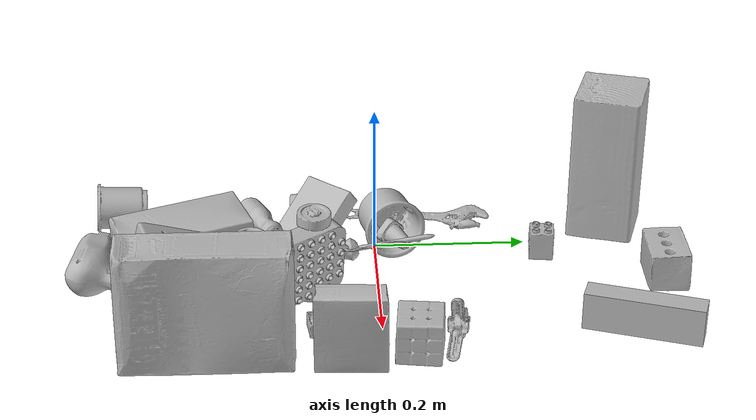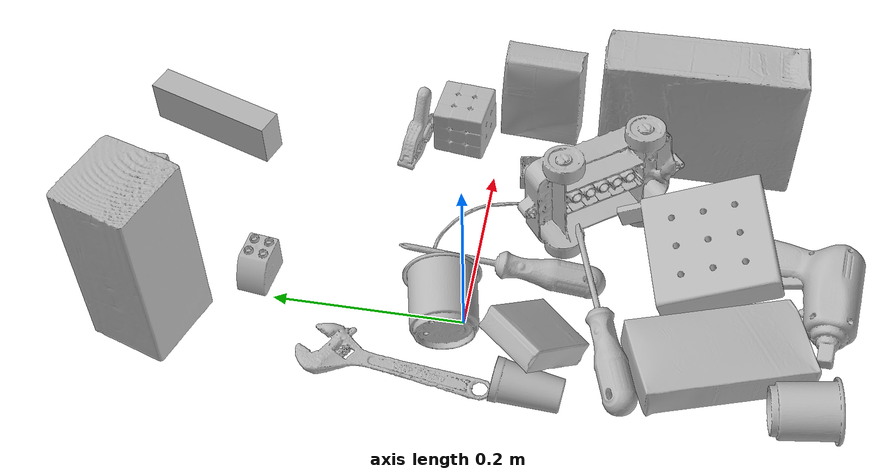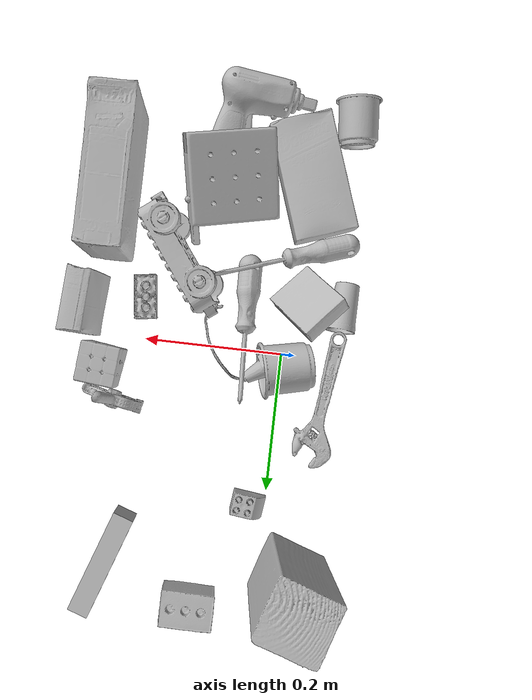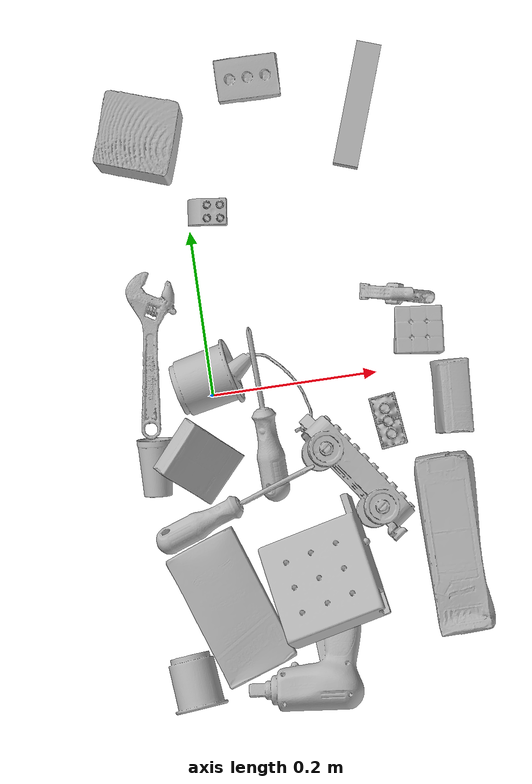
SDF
<sdf version="1.4">
  <world name="default">
    <light name="light1" type="point">
      <pose>0 0 1 0 0 0</pose>
      <diffuse>3 3 3 1</diffuse>
      <specular>3 3 3 1</specular>
    </light>
    <light name="light2" type="point">
      <pose>0 0.5 2 0 0 0</pose>
      <diffuse>1 1 1 1</diffuse>
      <specular>1 1 1 1</specular>
    </light>
    <light name="light3" type="point">
      <pose>0 0.5 2 0 0 0</pose>
      <diffuse>3 3 3 1</diffuse>
      <specular>3 3 3 1</specular>
    </light>
    <scene>
      <ambient>0.7 0.7 0.7</ambient>
    </scene>
    <model name="box21">
      <link name="link_box21">
        <collision name="default">
          <geometry>
            <mesh>
              <uri>model://cracker_box/collision_meshes/collision.obj</uri>
              <scale>1.0 1.0 1.0</scale>
            </mesh>
          </geometry>
          <surface>
            <friction>
              <ode>
                <mu>0.5</mu>
                <mu2>0.5</mu2>
              </ode>
            </friction>
          <contact>
        <ode>
            <max_vel>0</max_vel>
            <min_depth>0.0001</min_depth>
            <kp>1e8</kp>
        </ode>
    </contact></surface>
        </collision>
        <visual name="default">
          <geometry>
            <mesh>
              <uri>model://cracker_box/visual_meshes/visual.dae</uri>
              <scale>1.0 1.0 1.0</scale>
            </mesh>
          </geometry>
        </visual>
        <inertial>
          <mass>2.967785358428955</mass>
          <pose>0.0009464151808060706 0.00025434247800149024 -0.0017029535956680775 -0.0003162076618733006 -0.011106490531610344 0.00254679570085012</pose>
          <inertia>
            <ixx>0.0075487206</ixx>
            <iyy>0.012464421</iyy>
            <izz>0.017787872</izz>
            <ixy>0</ixy>
            <ixz>0</ixz>
            <iyz>0</iyz>
          </inertia>
        </inertial>
      </link>
      <pose>0.26229333877563477 -0.21423232555389404 0.08175766468048096 1.5452340324261462 0.009040538528878551 1.5827887459174892</pose>
    </model>
    <model name="box22">
      <link name="link_box22">
        <collision name="default">
          <geometry>
            <mesh>
              <uri>model://rubiks_cube/collision_meshes/collision.obj</uri>
              <scale>1.0 1.0 1.0</scale>
            </mesh>
          </geometry>
          <surface>
            <friction>
              <ode>
                <mu>0.5</mu>
                <mu2>0.5</mu2>
              </ode>
            </friction>
          <contact>
        <ode>
            <max_vel>0</max_vel>
            <min_depth>0.0001</min_depth>
            <kp>1e8</kp>
        </ode>
    </contact></surface>
        </collision>
        <visual name="default">
          <geometry>
            <mesh>
              <uri>model://rubiks_cube/visual_meshes/visual.dae</uri>
              <scale>1.0 1.0 1.0</scale>
            </mesh>
          </geometry>
        </visual>
        <inertial>
          <mass>0.2631562352180481</mass>
          <pose>2.6721041649580002e-05 5.2569666877388954e-05 -7.264316082000732e-06 -0.05467275409565722 -0.09814109117242276 -0.03445701547045584</pose>
          <inertia>
            <ixx>0.0001454115</ixx>
            <iyy>0.00014473335</iyy>
            <izz>0.00014661645</izz>
            <ixy>0</ixy>
            <ixz>0</ixz>
            <iyz>0</iyz>
          </inertia>
        </inertial>
      </link>
      <pose>0.25725722312927246 0.04285190626978874 0.02905973419547081 -3.134139521447266 0.010892369206653093 1.4346081183425516</pose>
    </model>
    <model name="box23">
      <link name="link_box23">
        <collision name="default">
          <geometry>
            <mesh>
              <uri>model://pudding_box/collision_meshes/collision.obj</uri>
              <scale>1.0 1.0 1.0</scale>
            </mesh>
          </geometry>
          <surface>
            <friction>
              <ode>
                <mu>0.5</mu>
                <mu2>0.5</mu2>
              </ode>
            </friction>
          <contact>
        <ode>
            <max_vel>0</max_vel>
            <min_depth>0.0001</min_depth>
            <kp>1e8</kp>
        </ode>
    </contact></surface>
        </collision>
        <visual name="default">
          <geometry>
            <mesh>
              <uri>model://pudding_box/visual_meshes/visual.dae</uri>
              <scale>1.0 1.0 1.0</scale>
            </mesh>
          </geometry>
        </visual>
        <inertial>
          <mass>0.41353368759155273</mass>
          <pose>0.0004894821904599667 0.0008067885646596551 -0.0005188827635720372 0.005213101814074476 -0.006603797777454713 0.020079821436089117</pose>
          <inertia>
            <ixx>0.0004674785</ixx>
            <iyy>0.00031452288</iyy>
            <izz>0.0006903542</izz>
            <ixy>0</ixy>
            <ixz>0</ixz>
            <iyz>0</iyz>
          </inertia>
        </inertial>
      </link>
      <pose>0.28457435965538025 -0.041945405304431915 0.056136906147003174 1.6395836372156884 -0.001167702822641025 1.523016416711767</pose>
    </model>
    <model name="cup1">
      <link name="link_cup1">
        <collision name="default">
          <geometry>
            <mesh>
              <uri>model://cup_small/collision_meshes/collision.obj</uri>
              <scale>1.0 1.0 1.0</scale>
            </mesh>
          </geometry>
          <surface>
            <friction>
              <ode>
                <mu>0.5</mu>
                <mu2>0.5</mu2>
              </ode>
            </friction>
          <contact>
        <ode>
            <max_vel>0</max_vel>
            <min_depth>0.0001</min_depth>
            <kp>1e8</kp>
        </ode>
    </contact></surface>
        </collision>
        <visual name="default">
          <geometry>
            <mesh>
              <uri>model://cup_small/visual_meshes/visual.dae</uri>
              <scale>1.0 1.0 1.0</scale>
            </mesh>
          </geometry>
        </visual>
        <inertial>
          <mass>0.02095564641058445</mass>
          <pose>0.00010482477955520153 -0.0003377848770469427 -0.01074282731860876 -0.011492722259696445 -0.015280529703091471 -0.5058449819350237</pose>
          <inertia>
            <ixx>1.2338362e-05</ixx>
            <iyy>1.240201e-05</iyy>
            <izz>5.5708097e-06</izz>
            <ixy>0</ixy>
            <ixz>0</ixz>
            <iyz>0</iyz>
          </inertia>
        </inertial>
      </link>
      <pose>-0.07991788536310196 -0.07663599401712418 0.020228885114192963 1.4932812880287856 -0.03315019685598828 3.053904740400876</pose>
    </model>
    <model name="cup2">
      <link name="link_cup2">
        <collision name="default">
          <geometry>
            <mesh>
              <uri>model://c_cups/collision_meshes/collision.obj</uri>
              <scale>1.0 1.0 1.0</scale>
            </mesh>
          </geometry>
          <surface>
            <friction>
              <ode>
                <mu>0.5</mu>
                <mu2>0.5</mu2>
              </ode>
            </friction>
          <contact>
        <ode>
            <max_vel>0</max_vel>
            <min_depth>0.0001</min_depth>
            <kp>1e8</kp>
        </ode>
    </contact></surface>
        </collision>
        <visual name="default">
          <geometry>
            <mesh>
              <uri>model://c_cups/visual_meshes/visual.dae</uri>
              <scale>1.0 1.0 1.0</scale>
            </mesh>
          </geometry>
        </visual>
        <inertial>
          <mass>0.04905003309249878</mass>
          <pose>0.0007237255922518671 0.0020153908990323544 -0.0012750986497849226 0.30215813246853196 0.013461388587527759 -0.08771773533446486</pose>
          <inertia>
            <ixx>3.6477843e-05</ixx>
            <iyy>3.583322e-05</iyy>
            <izz>3.225985e-05</izz>
            <ixy>0</ixy>
            <ixz>0</ixz>
            <iyz>0</iyz>
          </inertia>
        </inertial>
      </link>
      <pose>-0.06977666169404984 -0.3399997651576996 0.029918435961008072 1.4865195708463423 -0.03593951686462922 0.10270641146107114</pose>
    </model>
    <model name="box11">
      <link name="link_box11">
        <collision name="default">
          <geometry>
            <mesh>
              <uri>model://sugar_box/collision_meshes/collision.obj</uri>
              <scale>1.0 1.0 1.0</scale>
            </mesh>
          </geometry>
          <surface>
            <friction>
              <ode>
                <mu>0.5</mu>
                <mu2>0.5</mu2>
              </ode>
            </friction>
          <contact>
        <ode>
            <max_vel>0</max_vel>
            <min_depth>0.0001</min_depth>
            <kp>1e8</kp>
        </ode>
    </contact></surface>
        </collision>
        <visual name="default">
          <geometry>
            <mesh>
              <uri>model://sugar_box/visual_meshes/visual.dae</uri>
              <scale>1.0 1.0 1.0</scale>
            </mesh>
          </geometry>
        </visual>
        <inertial>
          <mass>0.9405714869499207</mass>
          <pose>0.0010343727190047503 3.849109634757042e-05 -0.0003636480832938105 -0.00040462618385709627 0.0010506635220579009 0.0026153790218148127</pose>
          <inertia>
            <ixx>0.0007836817</ixx>
            <iyy>0.0025330195</iyy>
            <izz>0.0030323272</izz>
            <ixy>0</ixy>
            <ixz>0</ixz>
            <iyz>0</iyz>
          </inertia>
        </inertial>
      </link>
      <pose>-0.01464706938713789 -0.2577778697013855 0.022798608988523483 0.000775854843630951 -0.023433431638763866 1.8998047292593963</pose>
    </model>
    <model name="box12">
      <link name="link_box12">
        <collision name="default">
          <geometry>
            <mesh>
              <uri>model://jenga/collision_meshes/collision.obj</uri>
              <scale>1.0 1.0 1.0</scale>
            </mesh>
          </geometry>
          <surface>
            <friction>
              <ode>
                <mu>0.5</mu>
                <mu2>0.5</mu2>
              </ode>
            </friction>
          <contact>
        <ode>
            <max_vel>0</max_vel>
            <min_depth>0.0001</min_depth>
            <kp>1e8</kp>
        </ode>
    </contact></surface>
        </collision>
        <visual name="default">
          <geometry>
            <mesh>
              <uri>model://jenga/visual_meshes/visual.dae</uri>
              <scale>1.0 1.0 1.0</scale>
            </mesh>
          </geometry>
        </visual>
        <inertial>
          <mass>0.2285791039466858</mass>
          <pose>-2.502855807051674e-07 -0.00010250010382151231 -4.0923405322246253e-05 0.0 -7.342155186052628e-07 0.0</pose>
          <inertia>
            <ixx>6.3253385e-05</ixx>
            <iyy>0.00042860323</iyy>
            <izz>0.00045757034</izz>
            <ixy>0</ixy>
            <ixz>0</ixz>
            <iyz>0</iyz>
          </inertia>
        </inertial>
      </link>
      <pose>0.22284729778766632 0.32262101769447327 0.024496953934431076 -1.5774974918514266 -3.4341800999792434e-08 1.2349744694209355</pose>
    </model>
    <model name="box13">
      <link name="link_box13">
        <collision name="default">
          <geometry>
            <mesh>
              <uri>model://wood_block/collision_meshes/collision.obj</uri>
              <scale>1.0 1.0 1.0</scale>
            </mesh>
          </geometry>
          <surface>
            <friction>
              <ode>
                <mu>0.5</mu>
                <mu2>0.5</mu2>
              </ode>
            </friction>
          <contact>
        <ode>
            <max_vel>0</max_vel>
            <min_depth>0.0001</min_depth>
            <kp>1e8</kp>
        </ode>
    </contact></surface>
        </collision>
        <visual name="default">
          <geometry>
            <mesh>
              <uri>model://wood_block/visual_meshes/visual.dae</uri>
              <scale>1.0 1.0 1.0</scale>
            </mesh>
          </geometry>
        </visual>
        <inertial>
          <mass>1.608048677444458</mass>
          <pose>-5.813315056002466e-06 -0.000570809468626976 0.0002640858292579651 -0.05220975529066727 -0.005192695547513155 -0.006861377927637377</pose>
          <inertia>
            <ixx>0.002151813</ixx>
            <iyy>0.006797577</iyy>
            <izz>0.0067721503</izz>
            <ixy>0</ixy>
            <ixz>0</ixz>
            <iyz>0</iyz>
          </inertia>
        </inertial>
      </link>
      <pose>-0.04184805601835251 0.3151460886001587 0.10359001904726028 -3.0767621709932667 -1.5707957104157335 -0.38547084055091063</pose>
    </model>
    <model name="box14">
      <link name="link_box14">
        <collision name="default">
          <geometry>
            <mesh>
              <uri>model://gelatin_box/collision_meshes/collision.obj</uri>
              <scale>1.0 1.0 1.0</scale>
            </mesh>
          </geometry>
          <surface>
            <friction>
              <ode>
                <mu>0.5</mu>
                <mu2>0.5</mu2>
              </ode>
            </friction>
          <contact>
        <ode>
            <max_vel>0</max_vel>
            <min_depth>0.0001</min_depth>
            <kp>1e8</kp>
        </ode>
    </contact></surface>
        </collision>
        <visual name="default">
          <geometry>
            <mesh>
              <uri>model://gelatin_box/visual_meshes/visual.dae</uri>
              <scale>1.0 1.0 1.0</scale>
            </mesh>
          </geometry>
        </visual>
        <inertial>
          <mass>0.228233203291893</mass>
          <pose>0.0004319618456065655 0.00011156871914863586 -0.0003640321083366871 -0.0010503721031013481 -0.004755817754301117 0.016440566922732165</pose>
          <inertia>
            <ixx>0.000161114</ixx>
            <iyy>0.0001150829</iyy>
            <izz>0.0002452514</izz>
            <ixy>0</ixy>
            <ixz>0</ixz>
            <iyz>0</iyz>
          </inertia>
        </inertial>
      </link>
      <pose>-0.028374968096613884 -0.07629168778657913 0.034725505858659744 2.5264221610436057 0.0045695973969176965 -2.285932071846181</pose>
    </model>
    <model name="cup15">
      <link name="link_cup15">
        <collision name="default">
          <geometry>
            <mesh>
              <uri>model://f_cups/collision_meshes/collision.obj</uri>
              <scale>1.0 1.0 1.0</scale>
            </mesh>
          </geometry>
          <surface>
            <friction>
              <ode>
                <mu>0.5</mu>
                <mu2>0.5</mu2>
              </ode>
            </friction>
          <contact>
        <ode>
            <max_vel>0</max_vel>
            <min_depth>0.0001</min_depth>
            <kp>1e8</kp>
        </ode>
    </contact></surface>
        </collision>
        <visual name="default">
          <geometry>
            <mesh>
              <uri>model://f_cups/visual_meshes/visual.dae</uri>
              <scale>1.0 1.0 1.0</scale>
            </mesh>
          </geometry>
        </visual>
        <inertial>
          <mass>0.05267045274376869</mass>
          <pose>-0.003171468386426568 -0.0006240073125809431 -0.003655537962913513 0.7862325736201227 -0.2607934836260618 -0.18237270236977254</pose>
          <inertia>
            <ixx>4.9511644e-05</ixx>
            <iyy>5.193826e-05</iyy>
            <izz>5.4069198e-05</izz>
            <ixy>0</ixy>
            <ixz>0</ixz>
            <iyz>0</iyz>
          </inertia>
        </inertial>
      </link>
      <pose>-0.005837590433657169 0.01938876323401928 0.037030719220638275 1.3151746665343327 -1.1784390165724614 2.0229805167243566</pose>
    </model>
    <model name="toy1">
      <link name="link_toy1">
        <collision name="default">
          <geometry>
            <mesh>
              <uri>model://g_lego_duplo/collision_meshes/collision.obj</uri>
              <scale>1.0 1.0 1.0</scale>
            </mesh>
          </geometry>
          <surface>
            <friction>
              <ode>
                <mu>0.5</mu>
                <mu2>0.5</mu2>
              </ode>
            </friction>
          <contact>
        <ode>
            <max_vel>0</max_vel>
            <min_depth>0.0001</min_depth>
            <kp>1e8</kp>
        </ode>
    </contact></surface>
        </collision>
        <visual name="default">
          <geometry>
            <mesh>
              <uri>model://g_lego_duplo/visual_meshes/visual.dae</uri>
              <scale>1.0 1.0 1.0</scale>
            </mesh>
          </geometry>
        </visual>
        <inertial>
          <mass>0.5557854771614075</mass>
          <pose>-0.050047677010297775 0.0017554635414853692 0.0038806761149317026 0.01096300832625367 0.038108254431045284 -0.0965302354071939</pose>
          <inertia>
            <ixx>0.0008053398</ixx>
            <iyy>0.0024348022</iyy>
            <izz>0.003046027</izz>
            <ixy>0</ixy>
            <ixz>0</ixz>
            <iyz>0</iyz>
          </inertia>
        </inertial>
      </link>
      <pose>0.12021763622760773 -0.07091329246759415 0.05949978530406952 1.669468903130492 0.007948633645183383 2.196303372308948</pose>
    </model>
    <model name="toy2">
      <link name="link_toy2">
        <collision name="default">
          <geometry>
            <mesh>
              <uri>model://b_toy_airplane/collision_meshes/collision.obj</uri>
              <scale>1.0 1.0 1.0</scale>
            </mesh>
          </geometry>
          <surface>
            <friction>
              <ode>
                <mu>0.5</mu>
                <mu2>0.5</mu2>
              </ode>
            </friction>
          <contact>
        <ode>
            <max_vel>0</max_vel>
            <min_depth>0.0001</min_depth>
            <kp>1e8</kp>
        </ode>
    </contact></surface>
        </collision>
        <visual name="default">
          <geometry>
            <mesh>
              <uri>model://b_toy_airplane/visual_meshes/visual.dae</uri>
              <scale>1.0 1.0 1.0</scale>
            </mesh>
          </geometry>
        </visual>
        <inertial>
          <mass>0.5134223699569702</mass>
          <pose>0.00508136348798871 0.004015584941953421 0.009543065913021564 -0.0400181167848636 -0.04022184003740235 -0.5601502230799963</pose>
          <inertia>
            <ixx>0.00095317804</ixx>
            <iyy>0.00038099466</iyy>
            <izz>0.0011858484</izz>
            <ixy>0</ixy>
            <ixz>0</ixz>
            <iyz>0</iyz>
          </inertia>
        </inertial>
      </link>
      <pose>0.09175761044025421 -0.34398314356803894 0.01697789877653122 0.18487881993076677 0.11350239371996788 3.043269868546437</pose>
    </model>
    <model name="toy3">
      <link name="link_toy3">
        <collision name="default">
          <geometry>
            <mesh>
              <uri>model://foam_brick/collision_meshes/collision.obj</uri>
              <scale>1.0 1.0 1.0</scale>
            </mesh>
          </geometry>
          <surface>
            <friction>
              <ode>
                <mu>0.5</mu>
                <mu2>0.5</mu2>
              </ode>
            </friction>
          <contact>
        <ode>
            <max_vel>0</max_vel>
            <min_depth>0.0001</min_depth>
            <kp>1e8</kp>
        </ode>
    </contact></surface>
        </collision>
        <visual name="default">
          <geometry>
            <mesh>
              <uri>model://foam_brick/visual_meshes/visual.dae</uri>
              <scale>1.0 1.0 1.0</scale>
            </mesh>
          </geometry>
        </visual>
        <inertial>
          <mass>0.10737738013267517</mass>
          <pose>-0.0002522472059354186 0.00034584314562380314 -0.0002532101352699101 -0.29401713280371045 0.01727443708188723 -0.0007449863066790336</pose>
          <inertia>
            <ixx>4.6904443e-05</ixx>
            <iyy>7.488536e-05</iyy>
            <izz>7.583706e-05</izz>
            <ixy>0</ixy>
            <ixz>0</ixz>
            <iyz>0</iyz>
          </inertia>
        </inertial>
      </link>
      <pose>0.09634832292795181 0.37333014607429504 0.025917530059814453 0.013817567968288005 0.0042768164586688496 -0.007986944490027658</pose>
    </model>
    <model name="toy4">
      <link name="link_toy4">
        <collision name="default">
          <geometry>
            <mesh>
              <uri>model://c_lego_duplo/collision_meshes/collision.obj</uri>
              <scale>1.0 1.0 1.0</scale>
            </mesh>
          </geometry>
          <surface>
            <friction>
              <ode>
                <mu>0.5</mu>
                <mu2>0.5</mu2>
              </ode>
            </friction>
          <contact>
        <ode>
            <max_vel>0</max_vel>
            <min_depth>0.0001</min_depth>
            <kp>1e8</kp>
        </ode>
    </contact></surface>
        </collision>
        <visual name="default">
          <geometry>
            <mesh>
              <uri>model://c_lego_duplo/visual_meshes/visual.dae</uri>
              <scale>1.0 1.0 1.0</scale>
            </mesh>
          </geometry>
        </visual>
        <inertial>
          <mass>0.0418582409620285</mass>
          <pose>0.00031645974377170205 0.00019464627257548273 0.0010453157592564821 -0.011520806412656213 0.005900100982121691 0.03110035028309464</pose>
          <inertia>
            <ixx>1.6107831e-05</ixx>
            <iyy>5.145423e-06</iyy>
            <izz>1.8823655e-05</izz>
            <ixy>0</ixy>
            <ixz>0</ixz>
            <iyz>0</iyz>
          </inertia>
        </inertial>
      </link>
      <pose>0.20579130947589874 -0.06064238399267197 0.011916476301848888 -3.1351425949735807 -0.0005020279360379671 -2.9949077997283178</pose>
    </model>
    <model name="toy5">
      <link name="link_toy5">
        <collision name="default">
          <geometry>
            <mesh>
              <uri>model://nine_hole_peg_test/collision_meshes/collision.obj</uri>
              <scale>1.0 1.0 1.0</scale>
            </mesh>
          </geometry>
          <surface>
            <friction>
              <ode>
                <mu>0.5</mu>
                <mu2>0.5</mu2>
              </ode>
            </friction>
          <contact>
        <ode>
            <max_vel>0</max_vel>
            <min_depth>0.0001</min_depth>
            <kp>1e8</kp>
        </ode>
    </contact></surface>
        </collision>
        <visual name="default">
          <geometry>
            <mesh>
              <uri>model://nine_hole_peg_test/visual_meshes/visual.dae</uri>
              <scale>1.0 1.0 1.0</scale>
            </mesh>
          </geometry>
        </visual>
        <inertial>
          <mass>0.44585999846458435</mass>
          <pose>-0.004617387428879738 -0.009647615253925323 2.6460689696250483e-05 -0.001466677754783098 0.0007194209279192062 -0.6342398490080472</pose>
          <inertia>
            <ixx>0.0006971755</ixx>
            <iyy>0.0006509454</iyy>
            <izz>0.0012216569</izz>
            <ixy>0</ixy>
            <ixz>0</ixz>
            <iyz>0</iyz>
          </inertia>
        </inertial>
      </link>
      <pose>0.10435278713703156 -0.22893604636192322 0.04606170207262039 -0.31693473611814604 -0.18252881215396052 0.24006291509303826</pose>
    </model>
    <model name="toy6">
      <link name="link_toy6">
        <collision name="default">
          <geometry>
            <mesh>
              <uri>model://d_lego_duplo/collision_meshes/collision.obj</uri>
              <scale>1.0 1.0 1.0</scale>
            </mesh>
          </geometry>
          <surface>
            <friction>
              <ode>
                <mu>0.5</mu>
                <mu2>0.5</mu2>
              </ode>
            </friction>
          <contact>
        <ode>
            <max_vel>0</max_vel>
            <min_depth>0.0001</min_depth>
            <kp>1e8</kp>
        </ode>
    </contact></surface>
        </collision>
        <visual name="default">
          <geometry>
            <mesh>
              <uri>model://d_lego_duplo/visual_meshes/visual.dae</uri>
              <scale>1.0 1.0 1.0</scale>
            </mesh>
          </geometry>
        </visual>
        <inertial>
          <mass>0.03287249803543091</mass>
          <pose>0.00283056334592402 0.0001636616507312283 0.000858980929479003 0.08010843587180921 -0.38355193616427774 0.0010296778305230027</pose>
          <inertia>
            <ixx>6.363631e-06</ixx>
            <iyy>9.031719e-06</iyy>
            <izz>8.709827e-06</izz>
            <ixy>0</ixy>
            <ixz>0</ixz>
            <iyz>0</iyz>
          </inertia>
        </inertial>
      </link>
      <pose>0.024751853197813034 0.22077594697475433 0.02173999883234501 -2.149999202742456e-07 -6.868721198896465e-07 -0.12370075816351311</pose>
    </model>
    <model name="hardware1">
      <link name="link_hardware1">
        <collision name="default">
          <geometry>
            <mesh>
              <uri>model://phillips_screwdriver/collision_meshes/collision.obj</uri>
              <scale>1.0 1.0 1.0</scale>
            </mesh>
          </geometry>
          <surface>
            <friction>
              <ode>
                <mu>0.5</mu>
                <mu2>0.5</mu2>
              </ode>
            </friction>
          <contact>
        <ode>
            <max_vel>0</max_vel>
            <min_depth>0.0001</min_depth>
            <kp>1e8</kp>
        </ode>
    </contact></surface>
        </collision>
        <visual name="default">
          <geometry>
            <mesh>
              <uri>model://phillips_screwdriver/visual_meshes/visual.dae</uri>
              <scale>1.0 1.0 1.0</scale>
            </mesh>
          </geometry>
        </visual>
        <inertial>
          <mass>0.05929635465145111</mass>
          <pose>-0.04777182266116142 0.0010362300090491772 -0.00045555492397397757 -0.15720933335137202 0.005850991845378533 -0.002156742438797471</pose>
          <inertia>
            <ixx>6.9667135e-06</ixx>
            <iyy>8.735042e-05</iyy>
            <izz>8.742465e-05</izz>
            <ixy>0</ixy>
            <ixz>0</ixz>
            <iyz>0</iyz>
          </inertia>
        </inertial>
      </link>
      <pose>0.056269168853759766 -0.03377450257539749 0.03040216863155365 -2.193258677601733 -0.14064882360462566 1.6009382824522527</pose>
    </model>
    <model name="hardware2">
      <link name="link_hardware2">
        <collision name="default">
          <geometry>
            <mesh>
              <uri>model://flat_screwdriver/collision_meshes/collision.obj</uri>
              <scale>1.0 1.0 1.0</scale>
            </mesh>
          </geometry>
          <surface>
            <friction>
              <ode>
                <mu>0.5</mu>
                <mu2>0.5</mu2>
              </ode>
            </friction>
          <contact>
        <ode>
            <max_vel>0</max_vel>
            <min_depth>0.0001</min_depth>
            <kp>1e8</kp>
        </ode>
    </contact></surface>
        </collision>
        <visual name="default">
          <geometry>
            <mesh>
              <uri>model://flat_screwdriver/visual_meshes/visual.dae</uri>
              <scale>1.0 1.0 1.0</scale>
            </mesh>
          </geometry>
        </visual>
        <inertial>
          <mass>0.08023945242166519</mass>
          <pose>-0.0489187017083168 -0.0006576800369657576 -0.000614091579336673 -0.561358306335632 -0.0032337267228942767 0.006982275729110292</pose>
          <inertia>
            <ixx>9.4802335e-06</ixx>
            <iyy>0.00012035375</iyy>
            <izz>0.00012029803</izz>
            <ixy>0</ixy>
            <ixz>0</ixz>
            <iyz>0</iyz>
          </inertia>
        </inertial>
      </link>
      <pose>0.006691664457321167 -0.13640134036540985 0.030566833913326263 -1.041770359584727 -0.15451498370014452 0.33093344086834836</pose>
    </model>
    <model name="hardware3">
      <link name="link_hardware3">
        <collision name="default">
          <geometry>
            <mesh>
              <uri>model://medium_clamp/collision_meshes/collision.obj</uri>
              <scale>1.0 1.0 1.0</scale>
            </mesh>
          </geometry>
          <surface>
            <friction>
              <ode>
                <mu>0.5</mu>
                <mu2>0.5</mu2>
              </ode>
            </friction>
          <contact>
        <ode>
            <max_vel>0</max_vel>
            <min_depth>0.0001</min_depth>
            <kp>1e8</kp>
        </ode>
    </contact></surface>
        </collision>
        <visual name="default">
          <geometry>
            <mesh>
              <uri>model://medium_clamp/visual_meshes/visual.dae</uri>
              <scale>1.0 1.0 1.0</scale>
            </mesh>
          </geometry>
        </visual>
        <inertial>
          <mass>0.025976430624723434</mass>
          <pose>0.0053909942507743835 0.0003953239065594971 -0.0001222159480676055 -0.001226907020768324 0.0025845009771016812 0.038207788380880015</pose>
          <inertia>
            <ixx>7.0769133e-06</ixx>
            <iyy>1.02989125e-05</iyy>
            <izz>1.5863408e-05</izz>
            <ixy>0</ixy>
            <ixz>0</ixz>
            <iyz>0</iyz>
          </inertia>
        </inertial>
      </link>
      <pose>0.23547618091106415 0.09053705632686615 0.02436235174536705 1.576572181824223 0.39347009997779764 2.91181092497293</pose>
    </model>
    <model name="hardware4">
      <link name="link_hardware4">
        <collision name="default">
          <geometry>
            <mesh>
              <uri>model://adjustable_wrench/collision_meshes/collision.obj</uri>
              <scale>1.0 1.0 1.0</scale>
            </mesh>
          </geometry>
          <surface>
            <friction>
              <ode>
                <mu>0.5</mu>
                <mu2>0.5</mu2>
              </ode>
            </friction>
          <contact>
        <ode>
            <max_vel>0</max_vel>
            <min_depth>0.0001</min_depth>
            <kp>1e8</kp>
        </ode>
    </contact></surface>
        </collision>
        <visual name="default">
          <geometry>
            <mesh>
              <uri>model://adjustable_wrench/visual_meshes/visual.dae</uri>
              <scale>1.0 1.0 1.0</scale>
            </mesh>
          </geometry>
        </visual>
        <inertial>
          <mass>0.023418840020895004</mass>
          <pose>0.03740980848670006 -0.00289688678458333 -0.0011149229248985648 -0.014473354604289867 0.006656022134877207 -0.010954199158636425</pose>
          <inertia>
            <ixx>4.793005e-06</ixx>
            <iyy>5.609652e-05</iyy>
            <izz>6.0634928e-05</izz>
            <ixy>0</ixy>
            <ixz>0</ixz>
            <iyz>0</iyz>
          </inertia>
        </inertial>
      </link>
      <pose>-0.06501713395118713 0.06210862845182419 0.005472204647958279 3.104145502840117 -0.003679324189255161 1.4487683317004707</pose>
    </model>
  <physics type="ode">
      <max_contacts>50</max_contacts>
      <ode>
        <solver>
          <type>quick</type>
          <iters>75</iters>
        </solver>
        <constraints>
          <contact_max_correcting_vel>0</contact_max_correcting_vel>
          <contact_surface_layer>0</contact_surface_layer>
        </constraints>
      </ode>
    </physics></world>
</sdf>
